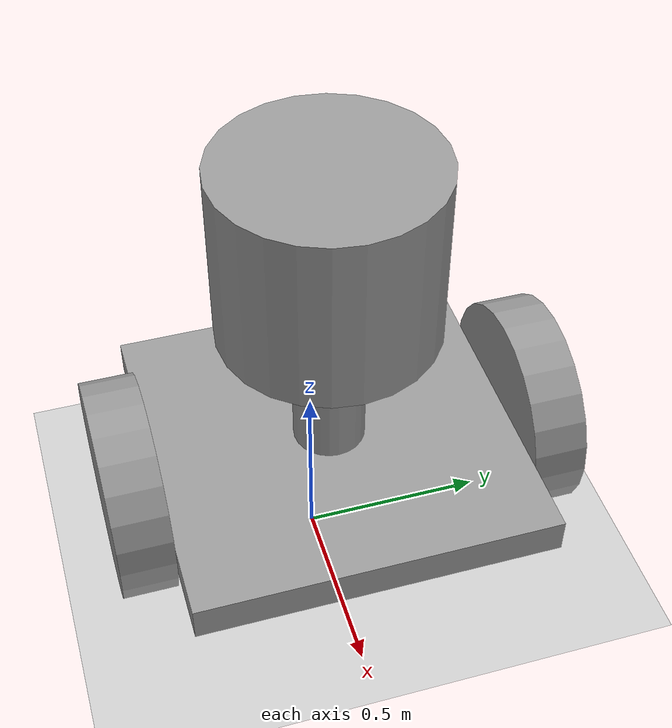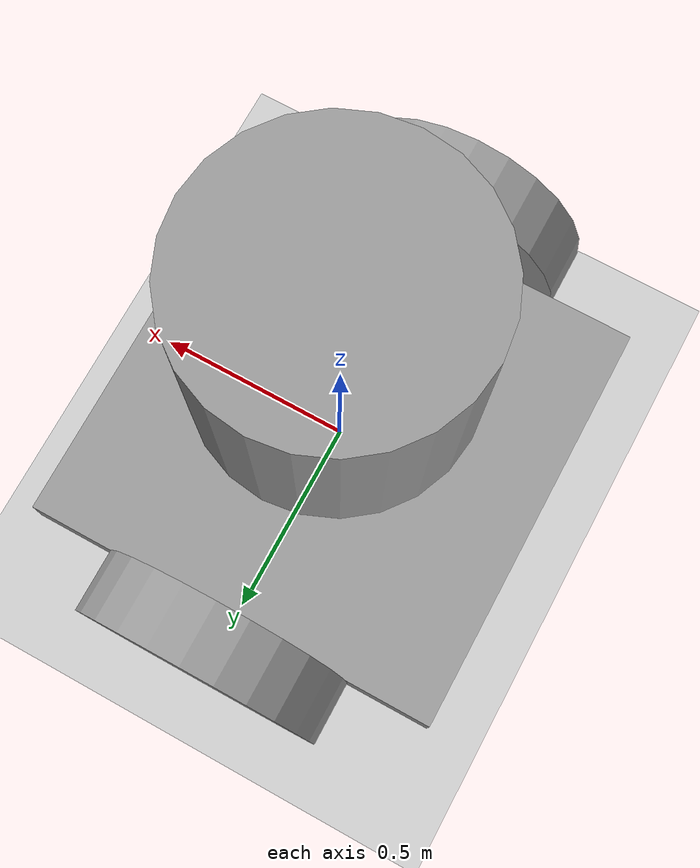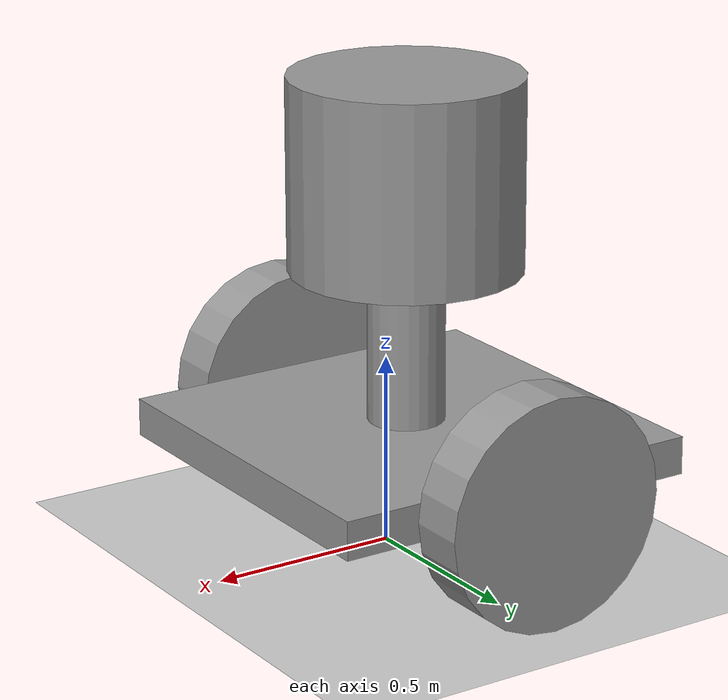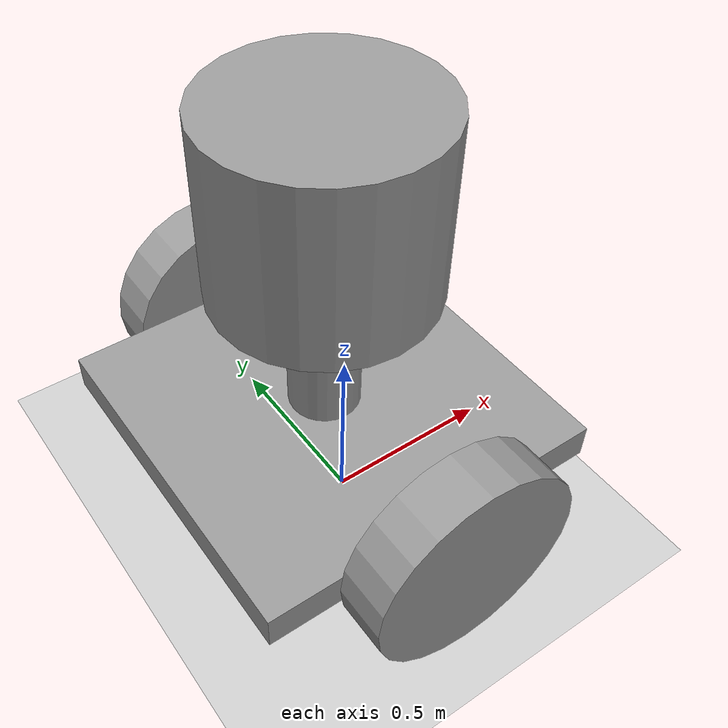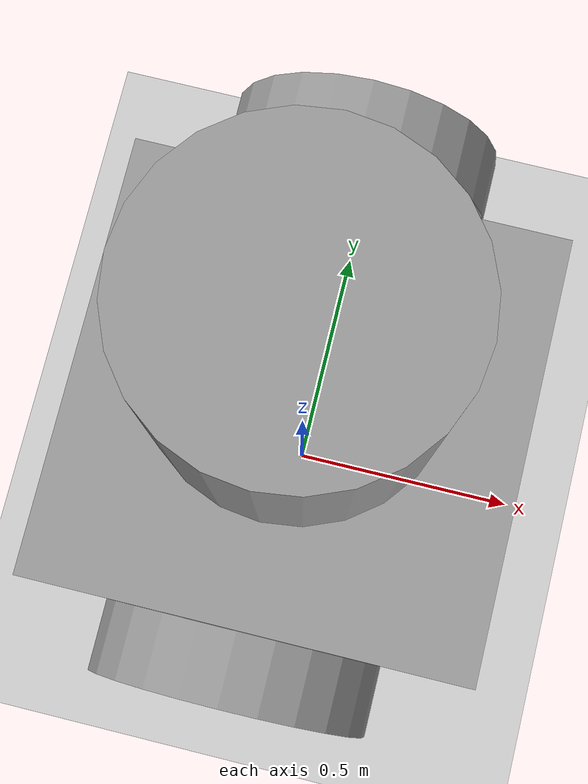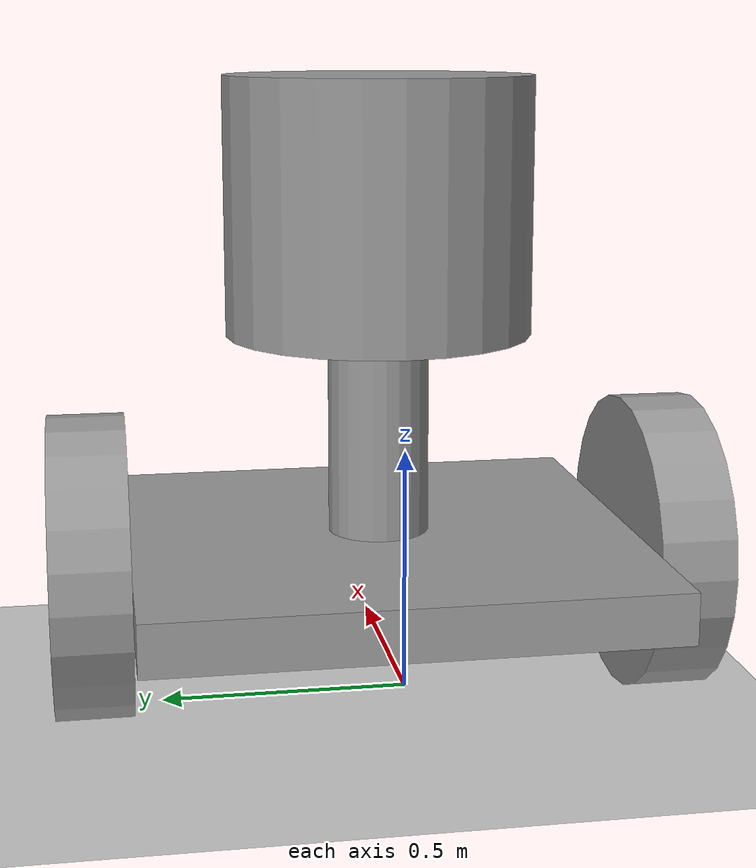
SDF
<sdf version="1.6">
 <world name="default">
  <model name="ground_plane">
   <static>1</static>
   <link name="link">
    <collision name="collision">
     <geometry><plane><normal>0 0 1</normal><size>100 100</size></plane></geometry>
     <surface><friction><ode><mu>100</mu><mu2>50</mu2></ode></friction></surface>
    </collision>
    <visual name="visual">
     <cast_shadows>0</cast_shadows>
     <geometry><plane><normal>0 0 1</normal><size>100 100</size></plane></geometry>
     <material>
      <script><uri>file://media/materials/scripts/gazebo.material</uri><name>Gazebo/Grey</name></script>
     </material>
    </visual>
   </link>
  </model>
  <model name="HumanoidRobot">
   <link name="link_0">
    <pose>0 0 0.1 0 -0 0</pose>
    <inertial>
     <mass>1</mass>
     <inertia>
      <ixx>0.166667</ixx>
      <ixy>0</ixy>
      <ixz>0</ixz>
      <iyy>0.166667</iyy>
      <iyz>0</iyz>
      <izz>0.166667</izz>
     </inertia>
    </inertial>
    <visual name="visual">
     <geometry><box><size>1 1 0.1</size></box></geometry>
     <material>
      <lighting>1</lighting>
      <script><uri>file://media/materials/scripts/gazebo.material</uri><name>Gazebo/Grey</name></script>
      <shader type="pixel"><normal_map>__default__</normal_map></shader>
      <ambient>0.3 0.3 0.3 1</ambient>
      <diffuse>0.7 0.7 0.7 1</diffuse>
      <specular>0.01 0.01 0.01 1</specular>
      <emissive>0 0 0 1</emissive>
     </material>
    </visual>
    <collision name="collision">
     <geometry><box><size>1 1 0.1</size></box></geometry>
     <surface>
      <friction>
       <ode><mu>1</mu><mu2>1</mu2><fdir1>0 0 0</fdir1><slip1>0</slip1><slip2>0</slip2></ode>
       <torsional>
        <coefficient>1</coefficient>
        <patch_radius>0</patch_radius>
        <surface_radius>0</surface_radius>
        <use_patch_radius>1</use_patch_radius>
        <ode><slip>0</slip></ode>
       </torsional>
      </friction>
      <bounce><restitution_coefficient>0</restitution_coefficient><threshold>1e+06</threshold></bounce>
      <contact>
       <collide_without_contact>0</collide_without_contact>
       <collide_without_contact_bitmask>1</collide_without_contact_bitmask>
       <collide_bitmask>1</collide_bitmask>
       <ode>
        <soft_cfm>0</soft_cfm>
        <soft_erp>0.2</soft_erp>
        <kp>1e+13</kp>
        <kd>1</kd>
        <max_vel>0.01</max_vel>
        <min_depth>0</min_depth>
       </ode>
       <bullet>
        <split_impulse>1</split_impulse>
        <split_impulse_penetration_threshold>-0.01</split_impulse_penetration_threshold>
        <soft_cfm>0</soft_cfm>
        <soft_erp>0.2</soft_erp>
        <kp>1e+13</kp>
        <kd>1</kd>
       </bullet>
      </contact>
     </surface>
    </collision>
   </link>
   <link name="link_0_0">
    <pose>0 -0.575027 0.1 1.5707 -0 0</pose>
    <inertial>
     <mass>1</mass>
     <inertia><ixx>0.145833</ixx><ixy>0</ixy><ixz>0</ixz><iyy>0.145833</iyy><iyz>0</iyz><izz>0.125</izz></inertia>
    </inertial>
    <visual name="visual">
     <geometry><cylinder><radius>0.3</radius><length>0.15</length></cylinder></geometry>
     <material>
      <lighting>1</lighting>
      <script><uri>file://media/materials/scripts/gazebo.material</uri><name>Gazebo/Grey</name></script>
      <shader type="pixel"><normal_map>__default__</normal_map></shader>
      <ambient>0.3 0.3 0.3 1</ambient>
      <diffuse>0.7 0.7 0.7 1</diffuse>
      <specular>0.01 0.01 0.01 1</specular>
      <emissive>0 0 0 1</emissive>
     </material>
    </visual>
    <collision name="collision">
     <geometry><cylinder><radius>0.3</radius><length>0.15</length></cylinder></geometry>
     <surface>
      <friction>
       <ode><mu>1</mu><mu2>1</mu2><fdir1>0 0 0</fdir1><slip1>0</slip1><slip2>0</slip2></ode>
       <torsional>
        <coefficient>1</coefficient>
        <patch_radius>0</patch_radius>
        <surface_radius>0</surface_radius>
        <use_patch_radius>1</use_patch_radius>
        <ode><slip>0</slip></ode>
       </torsional>
      </friction>
      <bounce><restitution_coefficient>0</restitution_coefficient><threshold>1e+06</threshold></bounce>
      <contact>
       <collide_without_contact>0</collide_without_contact>
       <collide_without_contact_bitmask>1</collide_without_contact_bitmask>
       <collide_bitmask>1</collide_bitmask>
       <ode>
        <soft_cfm>0</soft_cfm>
        <soft_erp>0.2</soft_erp>
        <kp>1e+13</kp>
        <kd>1</kd>
        <max_vel>0.01</max_vel>
        <min_depth>0</min_depth>
       </ode>
       <bullet>
        <split_impulse>1</split_impulse>
        <split_impulse_penetration_threshold>-0.01</split_impulse_penetration_threshold>
        <soft_cfm>0</soft_cfm>
        <soft_erp>0.2</soft_erp>
        <kp>1e+13</kp>
        <kd>1</kd>
       </bullet>
      </contact>
     </surface>
    </collision>
   </link>
   <link name="link_0_0_clone">
    <pose>0 0.575029 0.1 1.57069 -0 0</pose>
    <inertial>
     <mass>1</mass>
     <inertia><ixx>0.145833</ixx><ixy>0</ixy><ixz>0</ixz><iyy>0.145833</iyy><iyz>0</iyz><izz>0.125</izz></inertia>
    </inertial>
    <visual name="visual_0">
     <geometry><cylinder><radius>0.3</radius><length>0.15</length></cylinder></geometry>
     <material>
      <lighting>1</lighting>
      <script><uri>file://media/materials/scripts/gazebo.material</uri><name>Gazebo/Grey</name></script>
      <shader type="pixel"><normal_map>__default__</normal_map></shader>
      <ambient>0.3 0.3 0.3 1</ambient>
      <diffuse>0.7 0.7 0.7 1</diffuse>
      <specular>0.01 0.01 0.01 1</specular>
      <emissive>0 0 0 1</emissive>
     </material>
    </visual>
    <collision name="collision">
     <geometry><cylinder><radius>0.3</radius><length>0.15</length></cylinder></geometry>
     <surface>
      <friction>
       <ode><mu>1</mu><mu2>1</mu2><fdir1>0 0 0</fdir1><slip1>0</slip1><slip2>0</slip2></ode>
       <torsional>
        <coefficient>1</coefficient>
        <patch_radius>0</patch_radius>
        <surface_radius>0</surface_radius>
        <use_patch_radius>1</use_patch_radius>
        <ode><slip>0</slip></ode>
       </torsional>
      </friction>
      <bounce><restitution_coefficient>0</restitution_coefficient><threshold>1e+06</threshold></bounce>
      <contact>
       <collide_without_contact>0</collide_without_contact>
       <collide_without_contact_bitmask>1</collide_without_contact_bitmask>
       <collide_bitmask>1</collide_bitmask>
       <ode>
        <soft_cfm>0</soft_cfm>
        <soft_erp>0.2</soft_erp>
        <kp>1e+13</kp>
        <kd>1</kd>
        <max_vel>0.01</max_vel>
        <min_depth>0</min_depth>
       </ode>
       <bullet>
        <split_impulse>1</split_impulse>
        <split_impulse_penetration_threshold>-0.01</split_impulse_penetration_threshold>
        <soft_cfm>0</soft_cfm>
        <soft_erp>0.2</soft_erp>
        <kp>1e+13</kp>
        <kd>1</kd>
       </bullet>
      </contact>
     </surface>
    </collision>
   </link>
   <link name="link_0_1">
    <pose>0 0 0.299999 -2e-06 0 0</pose>
    <inertial>
     <mass>1</mass>
     <inertia><ixx>0.145833</ixx><ixy>0</ixy><ixz>0</ixz><iyy>0.145833</iyy><iyz>0</iyz><izz>0.125</izz></inertia>
    </inertial>
    <visual name="visual">
     <geometry><cylinder><radius>0.1</radius><length>0.5</length></cylinder></geometry>
     <material>
      <lighting>1</lighting>
      <script><uri>file://media/materials/scripts/gazebo.material</uri><name>Gazebo/Grey</name></script>
      <shader type="pixel"><normal_map>__default__</normal_map></shader>
      <ambient>0.3 0.3 0.3 1</ambient>
      <diffuse>0.7 0.7 0.7 1</diffuse>
      <specular>0.01 0.01 0.01 1</specular>
      <emissive>0 0 0 1</emissive>
     </material>
    </visual>
    <collision name="collision">
     <geometry><cylinder><radius>0.1</radius><length>0.5</length></cylinder></geometry>
     <surface>
      <friction>
       <ode><mu>1</mu><mu2>1</mu2><fdir1>0 0 0</fdir1><slip1>0</slip1><slip2>0</slip2></ode>
       <torsional>
        <coefficient>1</coefficient>
        <patch_radius>0</patch_radius>
        <surface_radius>0</surface_radius>
        <use_patch_radius>1</use_patch_radius>
        <ode><slip>0</slip></ode>
       </torsional>
      </friction>
      <bounce><restitution_coefficient>0</restitution_coefficient><threshold>1e+06</threshold></bounce>
      <contact>
       <collide_without_contact>0</collide_without_contact>
       <collide_without_contact_bitmask>1</collide_without_contact_bitmask>
       <collide_bitmask>1</collide_bitmask>
       <ode>
        <soft_cfm>0</soft_cfm>
        <soft_erp>0.2</soft_erp>
        <kp>1e+13</kp>
        <kd>1</kd>
        <max_vel>0.01</max_vel>
        <min_depth>0</min_depth>
       </ode>
       <bullet>
        <split_impulse>1</split_impulse>
        <split_impulse_penetration_threshold>-0.01</split_impulse_penetration_threshold>
        <soft_cfm>0</soft_cfm>
        <soft_erp>0.2</soft_erp>
        <kp>1e+13</kp>
        <kd>1</kd>
       </bullet>
      </contact>
     </surface>
    </collision>
   </link>
   <link name="link_1">
    <pose>0 2e-06 0.799999 -2e-06 0 0</pose>
    <inertial>
     <mass>1</mass>
     <inertia><ixx>0.145833</ixx><ixy>0</ixy><ixz>0</ixz><iyy>0.145833</iyy><iyz>0</iyz><izz>0.125</izz></inertia>
    </inertial>
    <visual name="visual">
     <geometry><cylinder><radius>0.3</radius><length>0.5</length></cylinder></geometry>
     <material>
      <lighting>1</lighting>
      <script><uri>file://media/materials/scripts/gazebo.material</uri><name>Gazebo/Grey</name></script>
      <shader type="pixel"><normal_map>__default__</normal_map></shader>
      <ambient>0.3 0.3 0.3 1</ambient>
      <diffuse>0.7 0.7 0.7 1</diffuse>
      <specular>0.01 0.01 0.01 1</specular>
      <emissive>0 0 0 1</emissive>
     </material>
    </visual>
    <collision name="collision">
     <geometry><cylinder><radius>0.3</radius><length>0.5</length></cylinder></geometry>
     <surface>
      <friction>
       <ode><mu>1</mu><mu2>1</mu2><fdir1>0 0 0</fdir1><slip1>0</slip1><slip2>0</slip2></ode>
       <torsional>
        <coefficient>1</coefficient>
        <patch_radius>0</patch_radius>
        <surface_radius>0</surface_radius>
        <use_patch_radius>1</use_patch_radius>
        <ode><slip>0</slip></ode>
       </torsional>
      </friction>
      <bounce><restitution_coefficient>0</restitution_coefficient><threshold>1e+06</threshold></bounce>
      <contact>
       <collide_without_contact>0</collide_without_contact>
       <collide_without_contact_bitmask>1</collide_without_contact_bitmask>
       <collide_bitmask>1</collide_bitmask>
       <ode>
        <soft_cfm>0</soft_cfm>
        <soft_erp>0.2</soft_erp>
        <kp>1e+13</kp>
        <kd>1</kd>
        <max_vel>0.01</max_vel>
        <min_depth>0</min_depth>
       </ode>
       <bullet>
        <split_impulse>1</split_impulse>
        <split_impulse_penetration_threshold>-0.01</split_impulse_penetration_threshold>
        <soft_cfm>0</soft_cfm>
        <soft_erp>0.2</soft_erp>
        <kp>1e+13</kp>
        <kd>1</kd>
       </bullet>
      </contact>
     </surface>
    </collision>
   </link>
   <joint name="link_0_1_JOINT_1" type="fixed">
    <parent>link_0_1</parent>
    <child>link_1</child>
    <physics>
     <ode><limit><cfm>0</cfm><erp>0.2</erp></limit><suspension><cfm>0</cfm><erp>0.2</erp></suspension></ode>
    </physics>
   </joint>
   <joint name="link_0_JOINT_0_0" type="fixed">
    <parent>link_0</parent>
    <child>link_0_1</child>
    <physics>
     <ode><limit><cfm>0</cfm><erp>0.2</erp></limit><suspension><cfm>0</cfm><erp>0.2</erp></suspension></ode>
    </physics>
   </joint>
   <joint name="link_0_JOINT_0" type="revolute">
    <parent>link_0</parent>
    <child>link_0_0</child>
    <axis>
     <xyz>0 0 1</xyz>
     <use_parent_model_frame>0</use_parent_model_frame>
     <limit>
      <lower>-1.79769e+308</lower>
      <upper>1.79769e+308</upper>
      <effort>-1</effort>
      <velocity>-1</velocity>
     </limit>
     <dynamics>
      <spring_reference>0</spring_reference>
      <spring_stiffness>0</spring_stiffness>
      <damping>0</damping>
      <friction>0</friction>
     </dynamics>
    </axis>
    <physics>
     <ode><limit><cfm>0</cfm><erp>0.2</erp></limit><suspension><cfm>0</cfm><erp>0.2</erp></suspension></ode>
    </physics>
   </joint>
   <joint name="link_0_JOINT_1" type="revolute">
    <parent>link_0</parent>
    <child>link_0_0_clone</child>
    <axis>
     <xyz>0 0 1</xyz>
     <use_parent_model_frame>0</use_parent_model_frame>
     <limit>
      <lower>-1.79769e+308</lower>
      <upper>1.79769e+308</upper>
      <effort>-1</effort>
      <velocity>-1</velocity>
     </limit>
     <dynamics>
      <spring_reference>0</spring_reference>
      <spring_stiffness>0</spring_stiffness>
      <damping>0</damping>
      <friction>0</friction>
     </dynamics>
    </axis>
    <physics>
     <ode><limit><cfm>0</cfm><erp>0.2</erp></limit><suspension><cfm>0</cfm><erp>0.2</erp></suspension></ode>
    </physics>
   </joint>
   <static>0</static>
   <pose>-0.02238 0.059648 0.200007 1e-06 -0 0</pose>
  </model>
 </world>
</sdf>
